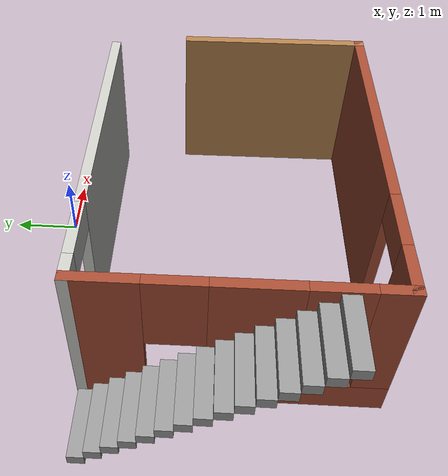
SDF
<?xml version='1.0'?>
<sdf version='1.7'>
  <model name='roberto'>
    <pose>-1.0075 -2.4125 0 0 -0 0</pose>
    <link name='Stairs_0'>
      <visual name='Stairs_0_Visual_0'>
        <pose>-2.7625 1.69583 0.083333 0 -0 0</pose>
        <geometry>
          <box>
            <size>1 0.233333 0.166667</size>
          </box>
        </geometry>
        <material>
          <script>
            <uri>file://media/materials/scripts/gazebo.material</uri>
            <name>Gazebo/Grey</name>
          </script>
          <ambient>1 1 1 1</ambient>
        </material>
        <meta>
          <layer>0</layer>
        </meta>
      </visual>
      <collision name='Stairs_0_Collision_0'>
        <geometry>
          <box>
            <size>1 0.233333 0.166667</size>
          </box>
        </geometry>
        <pose>-2.7625 1.69583 0.083333 0 -0 0</pose>
      </collision>
      <visual name='Stairs_0_Visual_1'>
        <pose>-2.7625 1.4625 0.25 0 -0 0</pose>
        <geometry>
          <box>
            <size>1 0.233333 0.166667</size>
          </box>
        </geometry>
        <material>
          <script>
            <uri>file://media/materials/scripts/gazebo.material</uri>
            <name>Gazebo/Grey</name>
          </script>
          <ambient>1 1 1 1</ambient>
        </material>
        <meta>
          <layer>0</layer>
        </meta>
      </visual>
      <collision name='Stairs_0_Collision_1'>
        <geometry>
          <box>
            <size>1 0.233333 0.166667</size>
          </box>
        </geometry>
        <pose>-2.7625 1.4625 0.25 0 -0 0</pose>
      </collision>
      <visual name='Stairs_0_Visual_2'>
        <pose>-2.7625 1.22917 0.416667 0 -0 0</pose>
        <geometry>
          <box>
            <size>1 0.233333 0.166667</size>
          </box>
        </geometry>
        <material>
          <script>
            <uri>file://media/materials/scripts/gazebo.material</uri>
            <name>Gazebo/Grey</name>
          </script>
          <ambient>1 1 1 1</ambient>
        </material>
        <meta>
          <layer>0</layer>
        </meta>
      </visual>
      <collision name='Stairs_0_Collision_2'>
        <geometry>
          <box>
            <size>1 0.233333 0.166667</size>
          </box>
        </geometry>
        <pose>-2.7625 1.22917 0.416667 0 -0 0</pose>
      </collision>
      <visual name='Stairs_0_Visual_3'>
        <pose>-2.7625 0.995834 0.583333 0 -0 0</pose>
        <geometry>
          <box>
            <size>1 0.233333 0.166667</size>
          </box>
        </geometry>
        <material>
          <script>
            <uri>file://media/materials/scripts/gazebo.material</uri>
            <name>Gazebo/Grey</name>
          </script>
          <ambient>1 1 1 1</ambient>
        </material>
        <meta>
          <layer>0</layer>
        </meta>
      </visual>
      <collision name='Stairs_0_Collision_3'>
        <geometry>
          <box>
            <size>1 0.233333 0.166667</size>
          </box>
        </geometry>
        <pose>-2.7625 0.995834 0.583333 0 -0 0</pose>
      </collision>
      <visual name='Stairs_0_Visual_4'>
        <pose>-2.7625 0.7625 0.75 0 -0 0</pose>
        <geometry>
          <box>
            <size>1 0.233333 0.166667</size>
          </box>
        </geometry>
        <material>
          <script>
            <uri>file://media/materials/scripts/gazebo.material</uri>
            <name>Gazebo/Grey</name>
          </script>
          <ambient>1 1 1 1</ambient>
        </material>
        <meta>
          <layer>0</layer>
        </meta>
      </visual>
      <collision name='Stairs_0_Collision_4'>
        <geometry>
          <box>
            <size>1 0.233333 0.166667</size>
          </box>
        </geometry>
        <pose>-2.7625 0.7625 0.75 0 -0 0</pose>
      </collision>
      <visual name='Stairs_0_Visual_5'>
        <pose>-2.7625 0.529167 0.916667 0 -0 0</pose>
        <geometry>
          <box>
            <size>1 0.233333 0.166667</size>
          </box>
        </geometry>
        <material>
          <script>
            <uri>file://media/materials/scripts/gazebo.material</uri>
            <name>Gazebo/Grey</name>
          </script>
          <ambient>1 1 1 1</ambient>
        </material>
        <meta>
          <layer>0</layer>
        </meta>
      </visual>
      <collision name='Stairs_0_Collision_5'>
        <geometry>
          <box>
            <size>1 0.233333 0.166667</size>
          </box>
        </geometry>
        <pose>-2.7625 0.529167 0.916667 0 -0 0</pose>
      </collision>
      <visual name='Stairs_0_Visual_6'>
        <pose>-2.7625 0.295834 1.08333 0 -0 0</pose>
        <geometry>
          <box>
            <size>1 0.233333 0.166667</size>
          </box>
        </geometry>
        <material>
          <script>
            <uri>file://media/materials/scripts/gazebo.material</uri>
            <name>Gazebo/Grey</name>
          </script>
          <ambient>1 1 1 1</ambient>
        </material>
        <meta>
          <layer>0</layer>
        </meta>
      </visual>
      <collision name='Stairs_0_Collision_6'>
        <geometry>
          <box>
            <size>1 0.233333 0.166667</size>
          </box>
        </geometry>
        <pose>-2.7625 0.295834 1.08333 0 -0 0</pose>
      </collision>
      <visual name='Stairs_0_Visual_7'>
        <pose>-2.7625 0.0625 1.25 0 -0 0</pose>
        <geometry>
          <box>
            <size>1 0.233333 0.166667</size>
          </box>
        </geometry>
        <material>
          <script>
            <uri>file://media/materials/scripts/gazebo.material</uri>
            <name>Gazebo/Grey</name>
          </script>
          <ambient>1 1 1 1</ambient>
        </material>
        <meta>
          <layer>0</layer>
        </meta>
      </visual>
      <collision name='Stairs_0_Collision_7'>
        <geometry>
          <box>
            <size>1 0.233333 0.166667</size>
          </box>
        </geometry>
        <pose>-2.7625 0.0625 1.25 0 -0 0</pose>
      </collision>
      <visual name='Stairs_0_Visual_8'>
        <pose>-2.7625 -0.170833 1.41667 0 -0 0</pose>
        <geometry>
          <box>
            <size>1 0.233333 0.166667</size>
          </box>
        </geometry>
        <material>
          <script>
            <uri>file://media/materials/scripts/gazebo.material</uri>
            <name>Gazebo/Grey</name>
          </script>
          <ambient>1 1 1 1</ambient>
        </material>
        <meta>
          <layer>0</layer>
        </meta>
      </visual>
      <collision name='Stairs_0_Collision_8'>
        <geometry>
          <box>
            <size>1 0.233333 0.166667</size>
          </box>
        </geometry>
        <pose>-2.7625 -0.170833 1.41667 0 -0 0</pose>
      </collision>
      <visual name='Stairs_0_Visual_9'>
        <pose>-2.7625 -0.404166 1.58333 0 -0 0</pose>
        <geometry>
          <box>
            <size>1 0.233333 0.166667</size>
          </box>
        </geometry>
        <material>
          <script>
            <uri>file://media/materials/scripts/gazebo.material</uri>
            <name>Gazebo/Grey</name>
          </script>
          <ambient>1 1 1 1</ambient>
        </material>
        <meta>
          <layer>0</layer>
        </meta>
      </visual>
      <collision name='Stairs_0_Collision_9'>
        <geometry>
          <box>
            <size>1 0.233333 0.166667</size>
          </box>
        </geometry>
        <pose>-2.7625 -0.404166 1.58333 0 -0 0</pose>
      </collision>
      <visual name='Stairs_0_Visual_10'>
        <pose>-2.7625 -0.6375 1.75 0 -0 0</pose>
        <geometry>
          <box>
            <size>1 0.233333 0.166667</size>
          </box>
        </geometry>
        <material>
          <script>
            <uri>file://media/materials/scripts/gazebo.material</uri>
            <name>Gazebo/Grey</name>
          </script>
          <ambient>1 1 1 1</ambient>
        </material>
        <meta>
          <layer>0</layer>
        </meta>
      </visual>
      <collision name='Stairs_0_Collision_10'>
        <geometry>
          <box>
            <size>1 0.233333 0.166667</size>
          </box>
        </geometry>
        <pose>-2.7625 -0.6375 1.75 0 -0 0</pose>
      </collision>
      <visual name='Stairs_0_Visual_11'>
        <pose>-2.7625 -0.870833 1.91667 0 -0 0</pose>
        <geometry>
          <box>
            <size>1 0.233333 0.166667</size>
          </box>
        </geometry>
        <material>
          <script>
            <uri>file://media/materials/scripts/gazebo.material</uri>
            <name>Gazebo/Grey</name>
          </script>
          <ambient>1 1 1 1</ambient>
        </material>
        <meta>
          <layer>0</layer>
        </meta>
      </visual>
      <collision name='Stairs_0_Collision_11'>
        <geometry>
          <box>
            <size>1 0.233333 0.166667</size>
          </box>
        </geometry>
        <pose>-2.7625 -0.870833 1.91667 0 -0 0</pose>
      </collision>
      <visual name='Stairs_0_Visual_12'>
        <pose>-2.7625 -1.10417 2.08333 0 -0 0</pose>
        <geometry>
          <box>
            <size>1 0.233333 0.166667</size>
          </box>
        </geometry>
        <material>
          <script>
            <uri>file://media/materials/scripts/gazebo.material</uri>
            <name>Gazebo/Grey</name>
          </script>
          <ambient>1 1 1 1</ambient>
        </material>
        <meta>
          <layer>0</layer>
        </meta>
      </visual>
      <collision name='Stairs_0_Collision_12'>
        <geometry>
          <box>
            <size>1 0.233333 0.166667</size>
          </box>
        </geometry>
        <pose>-2.7625 -1.10417 2.08333 0 -0 0</pose>
      </collision>
      <visual name='Stairs_0_Visual_13'>
        <pose>-2.7625 -1.3375 2.25 0 -0 0</pose>
        <geometry>
          <box>
            <size>1 0.233333 0.166667</size>
          </box>
        </geometry>
        <material>
          <script>
            <uri>file://media/materials/scripts/gazebo.material</uri>
            <name>Gazebo/Grey</name>
          </script>
          <ambient>1 1 1 1</ambient>
        </material>
        <meta>
          <layer>0</layer>
        </meta>
      </visual>
      <collision name='Stairs_0_Collision_13'>
        <geometry>
          <box>
            <size>1 0.233333 0.166667</size>
          </box>
        </geometry>
        <pose>-2.7625 -1.3375 2.25 0 -0 0</pose>
      </collision>
      <visual name='Stairs_0_Visual_14'>
        <pose>-2.7625 -1.57083 2.41667 0 -0 0</pose>
        <geometry>
          <box>
            <size>1 0.233333 0.166667</size>
          </box>
        </geometry>
        <material>
          <script>
            <uri>file://media/materials/scripts/gazebo.material</uri>
            <name>Gazebo/Grey</name>
          </script>
          <ambient>1 1 1 1</ambient>
        </material>
        <meta>
          <layer>0</layer>
        </meta>
      </visual>
      <collision name='Stairs_0_Collision_14'>
        <geometry>
          <box>
            <size>1 0.233333 0.166667</size>
          </box>
        </geometry>
        <pose>-2.7625 -1.57083 2.41667 0 -0 0</pose>
      </collision>
    </link>
    <link name='Wall_6'>
      <pose>0.3875 1.7625 0 0 -0 3.14159</pose>
      <visual name='Wall_6_Visual_0'>
        <pose>-0.6625 0 1.25 0 -0 0</pose>
        <geometry>
          <box>
            <size>3.925 0.15 2.5</size>
          </box>
        </geometry>
        <material>
          <script>
            <uri>file://media/materials/scripts/gazebo.material</uri>
            <name>Gazebo/CeilingTiled</name>
          </script>
          <ambient>1 1 1 1</ambient>
        </material>
        <meta>
          <layer>0</layer>
        </meta>
      </visual>
      <collision name='Wall_6_Collision_0'>
        <geometry>
          <box>
            <size>3.925 0.15 2.5</size>
          </box>
        </geometry>
        <pose>-0.6625 0 1.25 0 -0 0</pose>
      </collision>
      <visual name='Wall_6_Visual_1'>
        <pose>2.4125 0 1.25 0 -0 0</pose>
        <geometry>
          <box>
            <size>0.425 0.15 2.5</size>
          </box>
        </geometry>
        <material>
          <script>
            <uri>file://media/materials/scripts/gazebo.material</uri>
            <name>Gazebo/CeilingTiled</name>
          </script>
          <ambient>1 1 1 1</ambient>
        </material>
        <meta>
          <layer>0</layer>
        </meta>
      </visual>
      <collision name='Wall_6_Collision_1'>
        <geometry>
          <box>
            <size>0.425 0.15 2.5</size>
          </box>
        </geometry>
        <pose>2.4125 0 1.25 0 -0 0</pose>
      </collision>
      <visual name='Wall_6_Visual_2'>
        <pose>1.75 0 2.25 0 -0 0</pose>
        <geometry>
          <box>
            <size>0.9 0.15 0.5</size>
          </box>
        </geometry>
        <material>
          <script>
            <uri>file://media/materials/scripts/gazebo.material</uri>
            <name>Gazebo/CeilingTiled</name>
          </script>
          <ambient>1 1 1 1</ambient>
        </material>
        <meta>
          <layer>0</layer>
        </meta>
      </visual>
      <collision name='Wall_6_Collision_2'>
        <geometry>
          <box>
            <size>0.9 0.15 0.5</size>
          </box>
        </geometry>
        <pose>1.75 0 2.25 0 -0 0</pose>
      </collision>
    </link>
    <link name='Wall_7'>
      <pose>-2.1625 -0.2875 0 0 -0 -1.5708</pose>
      <visual name='Wall_7_Visual_0'>
        <pose>-1.6325 0 1.25 0 -0 0</pose>
        <geometry>
          <box>
            <size>0.985 0.15 2.5</size>
          </box>
        </geometry>
        <material>
          <script>
            <uri>file://media/materials/scripts/gazebo.material</uri>
            <name>Gazebo/Bricks</name>
          </script>
          <ambient>1 1 1 1</ambient>
        </material>
        <meta>
          <layer>0</layer>
        </meta>
      </visual>
      <collision name='Wall_7_Collision_0'>
        <geometry>
          <box>
            <size>0.985 0.15 2.5</size>
          </box>
        </geometry>
        <pose>-1.6325 0 1.25 0 -0 0</pose>
      </collision>
      <visual name='Wall_7_Visual_1'>
        <pose>0.4925 0 0.25 0 -0 0</pose>
        <geometry>
          <box>
            <size>3.265 0.15 0.5</size>
          </box>
        </geometry>
        <material>
          <script>
            <uri>file://media/materials/scripts/gazebo.material</uri>
            <name>Gazebo/Bricks</name>
          </script>
          <ambient>1 1 1 1</ambient>
        </material>
        <meta>
          <layer>0</layer>
        </meta>
      </visual>
      <collision name='Wall_7_Collision_1'>
        <geometry>
          <box>
            <size>3.265 0.15 0.5</size>
          </box>
        </geometry>
        <pose>0.4925 0 0.25 0 -0 0</pose>
      </collision>
      <visual name='Wall_7_Visual_2'>
        <pose>0.235 0 1.5 0 -0 0</pose>
        <geometry>
          <box>
            <size>1.15 0.15 2</size>
          </box>
        </geometry>
        <material>
          <script>
            <uri>file://media/materials/scripts/gazebo.material</uri>
            <name>Gazebo/Bricks</name>
          </script>
          <ambient>1 1 1 1</ambient>
        </material>
        <meta>
          <layer>0</layer>
        </meta>
      </visual>
      <collision name='Wall_7_Collision_2'>
        <geometry>
          <box>
            <size>1.15 0.15 2</size>
          </box>
        </geometry>
        <pose>0.235 0 1.5 0 -0 0</pose>
      </collision>
      <visual name='Wall_7_Visual_3'>
        <pose>1.8675 0 1.5 0 -0 0</pose>
        <geometry>
          <box>
            <size>0.515 0.15 2</size>
          </box>
        </geometry>
        <material>
          <script>
            <uri>file://media/materials/scripts/gazebo.material</uri>
            <name>Gazebo/Bricks</name>
          </script>
          <ambient>1 1 1 1</ambient>
        </material>
        <meta>
          <layer>0</layer>
        </meta>
      </visual>
      <collision name='Wall_7_Collision_3'>
        <geometry>
          <box>
            <size>0.515 0.15 2</size>
          </box>
        </geometry>
        <pose>1.8675 0 1.5 0 -0 0</pose>
      </collision>
      <visual name='Wall_7_Visual_4'>
        <pose>-0.74 0 1.9 0 -0 0</pose>
        <geometry>
          <box>
            <size>0.8 0.15 1.2</size>
          </box>
        </geometry>
        <material>
          <script>
            <uri>file://media/materials/scripts/gazebo.material</uri>
            <name>Gazebo/Bricks</name>
          </script>
          <ambient>1 1 1 1</ambient>
        </material>
        <meta>
          <layer>0</layer>
        </meta>
      </visual>
      <collision name='Wall_7_Collision_4'>
        <geometry>
          <box>
            <size>0.8 0.15 1.2</size>
          </box>
        </geometry>
        <pose>-0.74 0 1.9 0 -0 0</pose>
      </collision>
      <visual name='Wall_7_Visual_5'>
        <pose>1.21 0 1.9 0 -0 0</pose>
        <geometry>
          <box>
            <size>0.8 0.15 1.2</size>
          </box>
        </geometry>
        <material>
          <script>
            <uri>file://media/materials/scripts/gazebo.material</uri>
            <name>Gazebo/Bricks</name>
          </script>
          <ambient>1 1 1 1</ambient>
        </material>
        <meta>
          <layer>0</layer>
        </meta>
      </visual>
      <collision name='Wall_7_Collision_5'>
        <geometry>
          <box>
            <size>0.8 0.15 1.2</size>
          </box>
        </geometry>
        <pose>1.21 0 1.9 0 -0 0</pose>
      </collision>
    </link>
    <link name='Wall_8'>
      <pose>0.5125 -2.3375 0 0 -0 0</pose>
      <visual name='Wall_8_Visual_0'>
        <pose>-2.3575 0 1.25 0 -0 0</pose>
        <geometry>
          <box>
            <size>0.785 0.15 2.5</size>
          </box>
        </geometry>
        <material>
          <script>
            <uri>file://media/materials/scripts/gazebo.material</uri>
            <name>Gazebo/Bricks</name>
          </script>
          <ambient>1 1 1 1</ambient>
        </material>
        <meta>
          <layer>0</layer>
        </meta>
      </visual>
      <collision name='Wall_8_Collision_0'>
        <geometry>
          <box>
            <size>0.785 0.15 2.5</size>
          </box>
        </geometry>
        <pose>-2.3575 0 1.25 0 -0 0</pose>
      </collision>
      <visual name='Wall_8_Visual_1'>
        <pose>0.8425 0 1.25 0 -0 0</pose>
        <geometry>
          <box>
            <size>3.815 0.15 2.5</size>
          </box>
        </geometry>
        <material>
          <script>
            <uri>file://media/materials/scripts/gazebo.material</uri>
            <name>Gazebo/Bricks</name>
          </script>
          <ambient>1 1 1 1</ambient>
        </material>
        <meta>
          <layer>0</layer>
        </meta>
      </visual>
      <collision name='Wall_8_Collision_1'>
        <geometry>
          <box>
            <size>3.815 0.15 2.5</size>
          </box>
        </geometry>
        <pose>0.8425 0 1.25 0 -0 0</pose>
      </collision>
      <visual name='Wall_8_Visual_2'>
        <pose>-1.515 0 2.25 0 -0 0</pose>
        <geometry>
          <box>
            <size>0.9 0.15 0.5</size>
          </box>
        </geometry>
        <material>
          <script>
            <uri>file://media/materials/scripts/gazebo.material</uri>
            <name>Gazebo/Bricks</name>
          </script>
          <ambient>1 1 1 1</ambient>
        </material>
        <meta>
          <layer>0</layer>
        </meta>
      </visual>
      <collision name='Wall_8_Collision_2'>
        <geometry>
          <box>
            <size>0.9 0.15 0.5</size>
          </box>
        </geometry>
        <pose>-1.515 0 2.25 0 -0 0</pose>
      </collision>
    </link>
    <link name='Wall_9'>
      <collision name='Wall_9_Collision'>
        <geometry>
          <box>
            <size>3 0.15 2.5</size>
          </box>
        </geometry>
        <pose>0 0 1.25 0 -0 0</pose>
      </collision>
      <visual name='Wall_9_Visual'>
        <pose>0 0 1.25 0 -0 0</pose>
        <geometry>
          <box>
            <size>3 0.15 2.5</size>
          </box>
        </geometry>
        <material>
          <script>
            <uri>file://media/materials/scripts/gazebo.material</uri>
            <name>Gazebo/Wood</name>
          </script>
          <ambient>1 1 1 1</ambient>
        </material>
        <meta>
          <layer>0</layer>
        </meta>
      </visual>
      <pose>3.1875 -0.9125 0 0 -0 1.5708</pose>
    </link>
    <static>1</static>
  </model>
</sdf>
